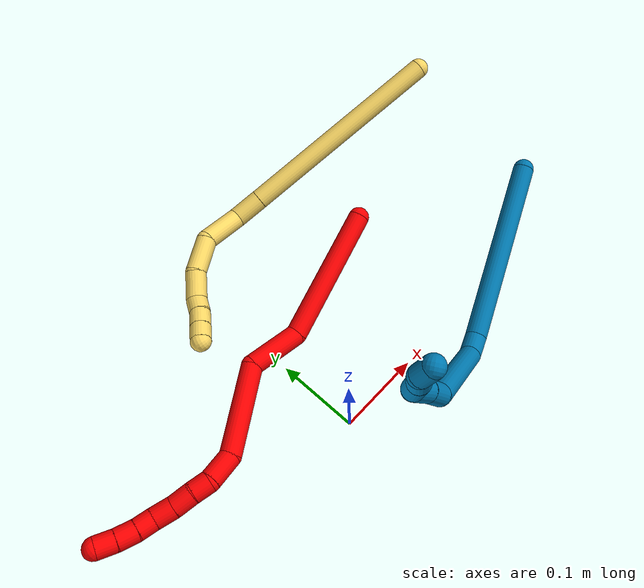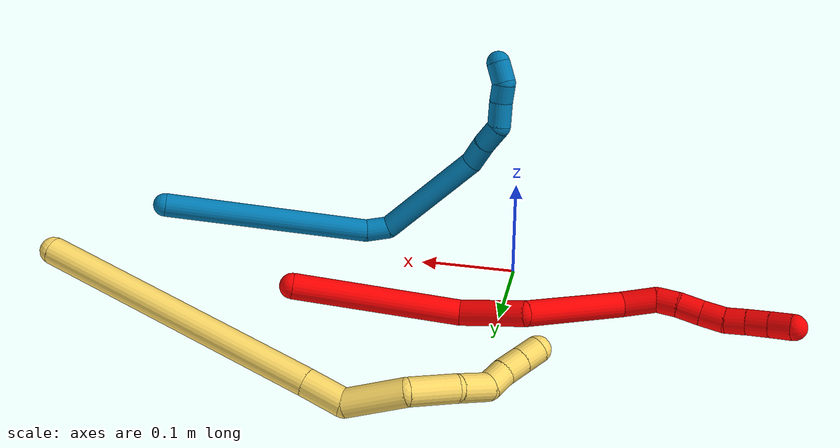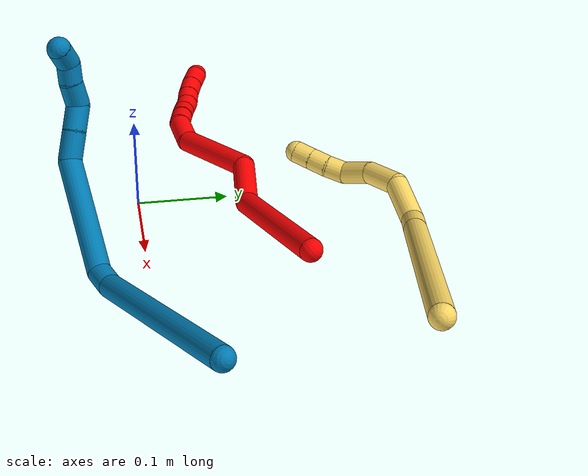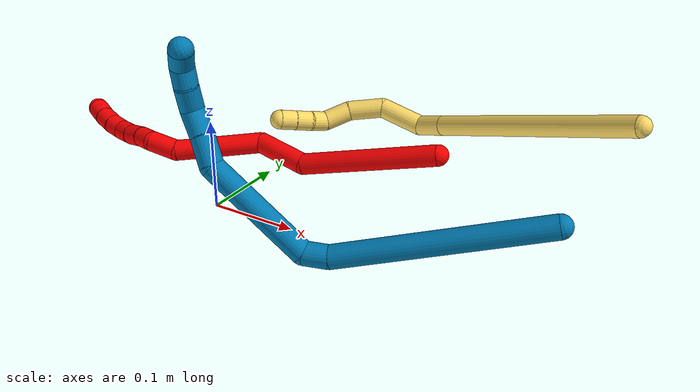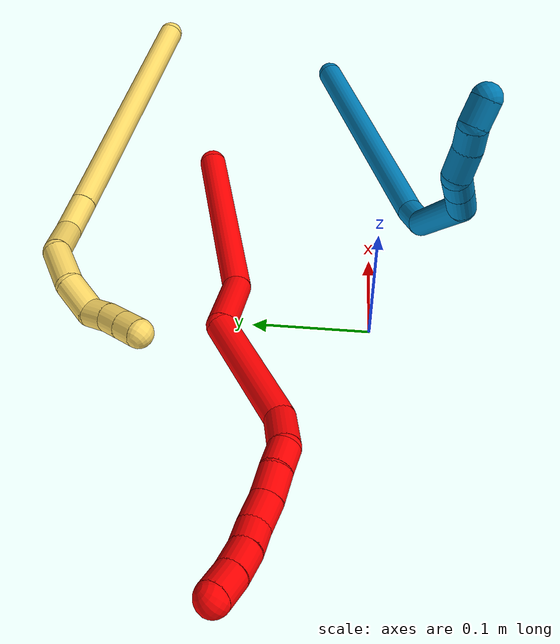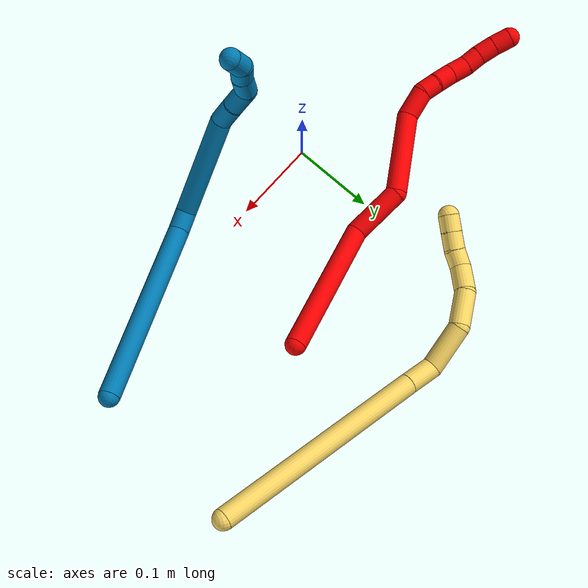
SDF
<sdf version="1.7">
 <world name="default">
  <model name="2">
   <static>0</static>
   <link name="2">
    <collision name="collision-cylinder-e_1_1_4">
     <pose>-0.077454 0.000726 -0.027057 -3.11475 -1.23461 3.10378</pose>
     <geometry><cylinder><radius>0.0125</radius><length>0.164095</length></cylinder></geometry>
     <surface>
      <friction><ode><mu>1.16</mu><mu2>1.16</mu2><slip1>0</slip1><slip2>0</slip2></ode></friction>
      <contact><ode><kp>1e+06</kp><kd>1</kd><max_vel>0</max_vel><min_depth>0.001</min_depth></ode></contact>
     </surface>
    </collision>
    <visual name="visual-cylinder-e_1_1_4">
     <pose>-0.077454 0.000726 -0.027057 -3.11475 -1.23461 3.10378</pose>
     <geometry><cylinder><radius>0.0125</radius><length>0.164095</length></cylinder></geometry>
     <material><ambient>1 0 0 1</ambient></material>
    </visual>
    <collision name="collision-cylinder-e_2_4_5">
     <pose>-0.187193 0.000964 -0.048769 0.091274 -1.40607 -0.077369</pose>
     <geometry><cylinder><radius>0.0125</radius><length>0.065454</length></cylinder></geometry>
     <surface>
      <friction><ode><mu>1.16</mu><mu2>1.16</mu2><slip1>0</slip1><slip2>0</slip2></ode></friction>
      <contact><ode><kp>1e+06</kp><kd>1</kd><max_vel>0</max_vel><min_depth>0.001</min_depth></ode></contact>
     </surface>
    </collision>
    <visual name="visual-cylinder-e_2_4_5">
     <pose>-0.187193 0.000964 -0.048769 0.091274 -1.40607 -0.077369</pose>
     <geometry><cylinder><radius>0.0125</radius><length>0.065454</length></cylinder></geometry>
     <material><ambient>1 0 0 1</ambient></material>
    </visual>
    <collision name="collision-cylinder-e_3_5_6">
     <pose>-0.263766 -0.013263 -0.067179 2.61727 -1.01611 -2.24344</pose>
     <geometry><cylinder><radius>0.0125</radius><length>0.104203</length></cylinder></geometry>
     <surface>
      <friction><ode><mu>1.16</mu><mu2>1.16</mu2><slip1>0</slip1><slip2>0</slip2></ode></friction>
      <contact><ode><kp>1e+06</kp><kd>1</kd><max_vel>0</max_vel><min_depth>0.001</min_depth></ode></contact>
     </surface>
    </collision>
    <visual name="visual-cylinder-e_3_5_6">
     <pose>-0.263766 -0.013263 -0.067179 2.61727 -1.01611 -2.24344</pose>
     <geometry><cylinder><radius>0.0125</radius><length>0.104203</length></cylinder></geometry>
     <material><ambient>1 0 0 1</ambient></material>
    </visual>
    <collision name="collision-cylinder-e_4_6_7">
     <pose>-0.325127 -0.030634 -0.090891 1.55902 -1.36102 -1.34951</pose>
     <geometry><cylinder><radius>0.0125</radius><length>0.034907</length></cylinder></geometry>
     <surface>
      <friction><ode><mu>1.16</mu><mu2>1.16</mu2><slip1>0</slip1><slip2>0</slip2></ode></friction>
      <contact><ode><kp>1e+06</kp><kd>1</kd><max_vel>0</max_vel><min_depth>0.001</min_depth></ode></contact>
     </surface>
    </collision>
    <visual name="visual-cylinder-e_4_6_7">
     <pose>-0.325127 -0.030634 -0.090891 1.55902 -1.36102 -1.34951</pose>
     <geometry><cylinder><radius>0.0125</radius><length>0.034907</length></cylinder></geometry>
     <material><ambient>1 0 0 1</ambient></material>
    </visual>
    <collision name="collision-cylinder-e_5_7_8">
     <pose>-0.352411 -0.032091 -0.089518 -1.02262 -1.32596 0.825903</pose>
     <geometry><cylinder><radius>0.0125</radius><length>0.021054</length></cylinder></geometry>
     <surface>
      <friction><ode><mu>1.16</mu><mu2>1.16</mu2><slip1>0</slip1><slip2>0</slip2></ode></friction>
      <contact><ode><kp>1e+06</kp><kd>1</kd><max_vel>0</max_vel><min_depth>0.001</min_depth></ode></contact>
     </surface>
    </collision>
    <visual name="visual-cylinder-e_5_7_8">
     <pose>-0.352411 -0.032091 -0.089518 -1.02262 -1.32596 0.825903</pose>
     <geometry><cylinder><radius>0.0125</radius><length>0.021054</length></cylinder></geometry>
     <material><ambient>1 0 0 1</ambient></material>
    </visual>
    <collision name="collision-cylinder-e_6_8_9">
     <pose>-0.373691 -0.026517 -0.087951 -1.50094 -1.27236 1.20627</pose>
     <geometry><cylinder><radius>0.0125</radius><length>0.023157</length></cylinder></geometry>
     <surface>
      <friction><ode><mu>1.16</mu><mu2>1.16</mu2><slip1>0</slip1><slip2>0</slip2></ode></friction>
      <contact><ode><kp>1e+06</kp><kd>1</kd><max_vel>0</max_vel><min_depth>0.001</min_depth></ode></contact>
     </surface>
    </collision>
    <visual name="visual-cylinder-e_6_8_9">
     <pose>-0.373691 -0.026517 -0.087951 -1.50094 -1.27236 1.20627</pose>
     <geometry><cylinder><radius>0.0125</radius><length>0.023157</length></cylinder></geometry>
     <material><ambient>1 0 0 1</ambient></material>
    </visual>
    <collision name="collision-cylinder-e_7_9_10">
     <pose>-0.395738 -0.019817 -0.085875 -1.06325 -1.23919 0.794391</pose>
     <geometry><cylinder><radius>0.0125</radius><length>0.023226</length></cylinder></geometry>
     <surface>
      <friction><ode><mu>1.16</mu><mu2>1.16</mu2><slip1>0</slip1><slip2>0</slip2></ode></friction>
      <contact><ode><kp>1e+06</kp><kd>1</kd><max_vel>0</max_vel><min_depth>0.001</min_depth></ode></contact>
     </surface>
    </collision>
    <visual name="visual-cylinder-e_7_9_10">
     <pose>-0.395738 -0.019817 -0.085875 -1.06325 -1.23919 0.794391</pose>
     <geometry><cylinder><radius>0.0125</radius><length>0.023226</length></cylinder></geometry>
     <material><ambient>1 0 0 1</ambient></material>
    </visual>
    <collision name="collision-cylinder-e_8_10_11">
     <pose>-0.416488 -0.015896 -0.081989 -0.29248 -1.35519 0.235947</pose>
     <geometry><cylinder><radius>0.0125</radius><length>0.020002</length></cylinder></geometry>
     <surface>
      <friction><ode><mu>1.16</mu><mu2>1.16</mu2><slip1>0</slip1><slip2>0</slip2></ode></friction>
      <contact><ode><kp>1e+06</kp><kd>1</kd><max_vel>0</max_vel><min_depth>0.001</min_depth></ode></contact>
     </surface>
    </collision>
    <visual name="visual-cylinder-e_8_10_11">
     <pose>-0.416488 -0.015896 -0.081989 -0.29248 -1.35519 0.235947</pose>
     <geometry><cylinder><radius>0.0125</radius><length>0.020002</length></cylinder></geometry>
     <material><ambient>1 0 0 1</ambient></material>
    </visual>
    <collision name="collision-cylinder-e_9_11_12">
     <pose>-0.436622 -0.013982 -0.076333 -0.345041 -1.21654 0.2415</pose>
     <geometry><cylinder><radius>0.0125</radius><length>0.022102</length></cylinder></geometry>
     <surface>
      <friction><ode><mu>1.16</mu><mu2>1.16</mu2><slip1>0</slip1><slip2>0</slip2></ode></friction>
      <contact><ode><kp>1e+06</kp><kd>1</kd><max_vel>0</max_vel><min_depth>0.001</min_depth></ode></contact>
     </surface>
    </collision>
    <visual name="visual-cylinder-e_9_11_12">
     <pose>-0.436622 -0.013982 -0.076333 -0.345041 -1.21654 0.2415</pose>
     <geometry><cylinder><radius>0.0125</radius><length>0.022102</length></cylinder></geometry>
     <material><ambient>1 0 0 1</ambient></material>
    </visual>
    <collision name="collision-cylinder-e_10_12_2">
     <pose>-0.456748 -0.011006 -0.068175 -0.353625 -1.10963 0.220572</pose>
     <geometry><cylinder><radius>0.0125</radius><length>0.0218</length></cylinder></geometry>
     <surface>
      <friction><ode><mu>1.16</mu><mu2>1.16</mu2><slip1>0</slip1><slip2>0</slip2></ode></friction>
      <contact><ode><kp>1e+06</kp><kd>1</kd><max_vel>0</max_vel><min_depth>0.001</min_depth></ode></contact>
     </surface>
    </collision>
    <visual name="visual-cylinder-e_10_12_2">
     <pose>-0.456748 -0.011006 -0.068175 -0.353625 -1.10963 0.220572</pose>
     <geometry><cylinder><radius>0.0125</radius><length>0.0218</length></cylinder></geometry>
     <material><ambient>1 0 0 1</ambient></material>
    </visual>
    <collision name="collision-sphere-2">
     <pose>-0.46651 -0.009326 -0.063625 0 -0 0</pose>
     <geometry><sphere><radius>0.0125</radius></sphere></geometry>
     <surface>
      <friction><ode><mu>1.16</mu><mu2>1.16</mu2><slip1>0</slip1><slip2>0</slip2></ode></friction>
      <contact><ode><kp>1e+06</kp><kd>1</kd><max_vel>0</max_vel><min_depth>0.001</min_depth></ode></contact>
     </surface>
    </collision>
    <visual name="visual-sphere-2">
     <pose>-0.46651 -0.009326 -0.063625 0 -0 0</pose>
     <geometry><sphere><radius>0.0125</radius></sphere></geometry>
     <material><ambient>1 0 0 1</ambient></material>
    </visual>
    <collision name="collision-sphere-12">
     <pose>-0.446987 -0.012686 -0.072725 0 -0 0</pose>
     <geometry><sphere><radius>0.0125</radius></sphere></geometry>
     <surface>
      <friction><ode><mu>1.16</mu><mu2>1.16</mu2><slip1>0</slip1><slip2>0</slip2></ode></friction>
      <contact><ode><kp>1e+06</kp><kd>1</kd><max_vel>0</max_vel><min_depth>0.001</min_depth></ode></contact>
     </surface>
    </collision>
    <visual name="visual-sphere-12">
     <pose>-0.446987 -0.012686 -0.072725 0 -0 0</pose>
     <geometry><sphere><radius>0.0125</radius></sphere></geometry>
     <material><ambient>1 0 0 1</ambient></material>
    </visual>
    <collision name="collision-sphere-11">
     <pose>-0.426257 -0.015279 -0.07994 0 -0 0</pose>
     <geometry><sphere><radius>0.0125</radius></sphere></geometry>
     <surface>
      <friction><ode><mu>1.16</mu><mu2>1.16</mu2><slip1>0</slip1><slip2>0</slip2></ode></friction>
      <contact><ode><kp>1e+06</kp><kd>1</kd><max_vel>0</max_vel><min_depth>0.001</min_depth></ode></contact>
     </surface>
    </collision>
    <visual name="visual-sphere-11">
     <pose>-0.426257 -0.015279 -0.07994 0 -0 0</pose>
     <geometry><sphere><radius>0.0125</radius></sphere></geometry>
     <material><ambient>1 0 0 1</ambient></material>
    </visual>
    <collision name="collision-sphere-10">
     <pose>-0.406719 -0.016513 -0.084038 0 -0 0</pose>
     <geometry><sphere><radius>0.0125</radius></sphere></geometry>
     <surface>
      <friction><ode><mu>1.16</mu><mu2>1.16</mu2><slip1>0</slip1><slip2>0</slip2></ode></friction>
      <contact><ode><kp>1e+06</kp><kd>1</kd><max_vel>0</max_vel><min_depth>0.001</min_depth></ode></contact>
     </surface>
    </collision>
    <visual name="visual-sphere-10">
     <pose>-0.406719 -0.016513 -0.084038 0 -0 0</pose>
     <geometry><sphere><radius>0.0125</radius></sphere></geometry>
     <material><ambient>1 0 0 1</ambient></material>
    </visual>
    <collision name="collision-sphere-9">
     <pose>-0.384758 -0.023121 -0.087713 0 -0 0</pose>
     <geometry><sphere><radius>0.0125</radius></sphere></geometry>
     <surface>
      <friction><ode><mu>1.16</mu><mu2>1.16</mu2><slip1>0</slip1><slip2>0</slip2></ode></friction>
      <contact><ode><kp>1e+06</kp><kd>1</kd><max_vel>0</max_vel><min_depth>0.001</min_depth></ode></contact>
     </surface>
    </collision>
    <visual name="visual-sphere-9">
     <pose>-0.384758 -0.023121 -0.087713 0 -0 0</pose>
     <geometry><sphere><radius>0.0125</radius></sphere></geometry>
     <material><ambient>1 0 0 1</ambient></material>
    </visual>
    <collision name="collision-sphere-4">
     <pose>-0.154909 0.001453 -0.054114 0 -0 0</pose>
     <geometry><sphere><radius>0.0125</radius></sphere></geometry>
     <surface>
      <friction><ode><mu>1.16</mu><mu2>1.16</mu2><slip1>0</slip1><slip2>0</slip2></ode></friction>
      <contact><ode><kp>1e+06</kp><kd>1</kd><max_vel>0</max_vel><min_depth>0.001</min_depth></ode></contact>
     </surface>
    </collision>
    <visual name="visual-sphere-4">
     <pose>-0.154909 0.001453 -0.054114 0 -0 0</pose>
     <geometry><sphere><radius>0.0125</radius></sphere></geometry>
     <material><ambient>1 0 0 1</ambient></material>
    </visual>
    <collision name="collision-sphere-1">
     <geometry><sphere><radius>0.0125</radius></sphere></geometry>
     <surface>
      <friction><ode><mu>1.16</mu><mu2>1.16</mu2><slip1>0</slip1><slip2>0</slip2></ode></friction>
      <contact><ode><kp>1e+06</kp><kd>1</kd><max_vel>0</max_vel><min_depth>0.001</min_depth></ode></contact>
     </surface>
    </collision>
    <visual name="visual-sphere-1">
     <geometry><sphere><radius>0.0125</radius></sphere></geometry>
     <material><ambient>1 0 0 1</ambient></material>
    </visual>
    <collision name="collision-sphere-8">
     <pose>-0.362624 -0.029913 -0.088188 0 -0 0</pose>
     <geometry><sphere><radius>0.0125</radius></sphere></geometry>
     <surface>
      <friction><ode><mu>1.16</mu><mu2>1.16</mu2><slip1>0</slip1><slip2>0</slip2></ode></friction>
      <contact><ode><kp>1e+06</kp><kd>1</kd><max_vel>0</max_vel><min_depth>0.001</min_depth></ode></contact>
     </surface>
    </collision>
    <visual name="visual-sphere-8">
     <pose>-0.362624 -0.029913 -0.088188 0 -0 0</pose>
     <geometry><sphere><radius>0.0125</radius></sphere></geometry>
     <material><ambient>1 0 0 1</ambient></material>
    </visual>
    <collision name="collision-sphere-5">
     <pose>-0.219477 0.000475 -0.043425 0 -0 0</pose>
     <geometry><sphere><radius>0.0125</radius></sphere></geometry>
     <surface>
      <friction><ode><mu>1.16</mu><mu2>1.16</mu2><slip1>0</slip1><slip2>0</slip2></ode></friction>
      <contact><ode><kp>1e+06</kp><kd>1</kd><max_vel>0</max_vel><min_depth>0.001</min_depth></ode></contact>
     </surface>
    </collision>
    <visual name="visual-sphere-5">
     <pose>-0.219477 0.000475 -0.043425 0 -0 0</pose>
     <geometry><sphere><radius>0.0125</radius></sphere></geometry>
     <material><ambient>1 0 0 1</ambient></material>
    </visual>
    <collision name="collision-sphere-6">
     <pose>-0.308056 -0.027 -0.090933 0 -0 0</pose>
     <geometry><sphere><radius>0.0125</radius></sphere></geometry>
     <surface>
      <friction><ode><mu>1.16</mu><mu2>1.16</mu2><slip1>0</slip1><slip2>0</slip2></ode></friction>
      <contact><ode><kp>1e+06</kp><kd>1</kd><max_vel>0</max_vel><min_depth>0.001</min_depth></ode></contact>
     </surface>
    </collision>
    <visual name="visual-sphere-6">
     <pose>-0.308056 -0.027 -0.090933 0 -0 0</pose>
     <geometry><sphere><radius>0.0125</radius></sphere></geometry>
     <material><ambient>1 0 0 1</ambient></material>
    </visual>
    <collision name="collision-sphere-7">
     <pose>-0.342198 -0.034269 -0.090848 0 -0 0</pose>
     <geometry><sphere><radius>0.0125</radius></sphere></geometry>
     <surface>
      <friction><ode><mu>1.16</mu><mu2>1.16</mu2><slip1>0</slip1><slip2>0</slip2></ode></friction>
      <contact><ode><kp>1e+06</kp><kd>1</kd><max_vel>0</max_vel><min_depth>0.001</min_depth></ode></contact>
     </surface>
    </collision>
    <visual name="visual-sphere-7">
     <pose>-0.342198 -0.034269 -0.090848 0 -0 0</pose>
     <geometry><sphere><radius>0.0125</radius></sphere></geometry>
     <material><ambient>1 0 0 1</ambient></material>
    </visual>
    <inertial>
     <pose>-0.233999 -0.009772 -0.057068 0 -0 0</pose>
     <mass>0.5</mass>
     <inertia>
      <ixx>-0.000221</ixx>
      <ixy>0</ixy>
      <ixz>0</ixz>
      <iyy>0.000465</iyy>
      <iyz>0</iyz>
      <izz>0.000495</izz>
     </inertia>
    </inertial>
   </link>
   <pose>0.190971 0.15885 0.045027 -0.809656 0.031139 0.020762</pose>
  </model>
  <model name="5">
   <static>0</static>
   <link name="5">
    <collision name="collision-cylinder-e_1_1_4">
     <pose>-0.019305 0.030429 -0.127848 -2.90793 -0.145853 1.11356</pose>
     <geometry><cylinder><radius>0.0125</radius><length>0.265658</length></cylinder></geometry>
     <surface>
      <friction><ode><mu>1.16</mu><mu2>1.16</mu2><slip1>0</slip1><slip2>0</slip2></ode></friction>
      <contact><ode><kp>1e+06</kp><kd>1</kd><max_vel>0</max_vel><min_depth>0.001</min_depth></ode></contact>
     </surface>
    </collision>
    <visual name="visual-cylinder-e_1_1_4">
     <pose>-0.019305 0.030429 -0.127848 -2.90793 -0.145853 1.11356</pose>
     <geometry><cylinder><radius>0.0125</radius><length>0.265658</length></cylinder></geometry>
     <material><ambient>1 0.858824 0.4 1</ambient></material>
    </visual>
    <collision name="collision-cylinder-e_2_4_5">
     <pose>-0.041384 0.064811 -0.273842 -2.92706 -0.148264 1.20759</pose>
     <geometry><cylinder><radius>0.0125</radius><length>0.037558</length></cylinder></geometry>
     <surface>
      <friction><ode><mu>1.16</mu><mu2>1.16</mu2><slip1>0</slip1><slip2>0</slip2></ode></friction>
      <contact><ode><kp>1e+06</kp><kd>1</kd><max_vel>0</max_vel><min_depth>0.001</min_depth></ode></contact>
     </surface>
    </collision>
    <visual name="visual-cylinder-e_2_4_5">
     <pose>-0.041384 0.064811 -0.273842 -2.92706 -0.148264 1.20759</pose>
     <geometry><cylinder><radius>0.0125</radius><length>0.037558</length></cylinder></geometry>
     <material><ambient>1 0.858824 0.4 1</ambient></material>
    </visual>
    <collision name="collision-cylinder-e_3_5_6">
     <pose>-0.040667 0.088562 -0.31104 -2.33698 0.126362 -0.295195</pose>
     <geometry><cylinder><radius>0.0125</radius><length>0.055391</length></cylinder></geometry>
     <surface>
      <friction><ode><mu>1.16</mu><mu2>1.16</mu2><slip1>0</slip1><slip2>0</slip2></ode></friction>
      <contact><ode><kp>1e+06</kp><kd>1</kd><max_vel>0</max_vel><min_depth>0.001</min_depth></ode></contact>
     </surface>
    </collision>
    <visual name="visual-cylinder-e_3_5_6">
     <pose>-0.040667 0.088562 -0.31104 -2.33698 0.126362 -0.295195</pose>
     <geometry><cylinder><radius>0.0125</radius><length>0.055391</length></cylinder></geometry>
     <material><ambient>1 0.858824 0.4 1</ambient></material>
    </visual>
    <collision name="collision-cylinder-e_4_6_7">
     <pose>-0.046255 0.124119 -0.342376 -2.23296 -0.426407 0.834506</pose>
     <geometry><cylinder><radius>0.0125</radius><length>0.043895</length></cylinder></geometry>
     <surface>
      <friction><ode><mu>1.16</mu><mu2>1.16</mu2><slip1>0</slip1><slip2>0</slip2></ode></friction>
      <contact><ode><kp>1e+06</kp><kd>1</kd><max_vel>0</max_vel><min_depth>0.001</min_depth></ode></contact>
     </surface>
    </collision>
    <visual name="visual-cylinder-e_4_6_7">
     <pose>-0.046255 0.124119 -0.342376 -2.23296 -0.426407 0.834506</pose>
     <geometry><cylinder><radius>0.0125</radius><length>0.043895</length></cylinder></geometry>
     <material><ambient>1 0.858824 0.4 1</ambient></material>
    </visual>
    <collision name="collision-cylinder-e_5_7_8">
     <pose>-0.067296 0.150764 -0.360767 -2.08198 -0.764224 1.20278</pose>
     <geometry><cylinder><radius>0.0125</radius><length>0.034578</length></cylinder></geometry>
     <surface>
      <friction><ode><mu>1.16</mu><mu2>1.16</mu2><slip1>0</slip1><slip2>0</slip2></ode></friction>
      <contact><ode><kp>1e+06</kp><kd>1</kd><max_vel>0</max_vel><min_depth>0.001</min_depth></ode></contact>
     </surface>
    </collision>
    <visual name="visual-cylinder-e_5_7_8">
     <pose>-0.067296 0.150764 -0.360767 -2.08198 -0.764224 1.20278</pose>
     <geometry><cylinder><radius>0.0125</radius><length>0.034578</length></cylinder></geometry>
     <material><ambient>1 0.858824 0.4 1</ambient></material>
    </visual>
    <collision name="collision-cylinder-e_6_8_9">
     <pose>-0.083212 0.171539 -0.36665 -1.54828 -0.380175 0.371905</pose>
     <geometry><cylinder><radius>0.0125</radius><length>0.021306</length></cylinder></geometry>
     <surface>
      <friction><ode><mu>1.16</mu><mu2>1.16</mu2><slip1>0</slip1><slip2>0</slip2></ode></friction>
      <contact><ode><kp>1e+06</kp><kd>1</kd><max_vel>0</max_vel><min_depth>0.001</min_depth></ode></contact>
     </surface>
    </collision>
    <visual name="visual-cylinder-e_6_8_9">
     <pose>-0.083212 0.171539 -0.36665 -1.54828 -0.380175 0.371905</pose>
     <geometry><cylinder><radius>0.0125</radius><length>0.021306</length></cylinder></geometry>
     <material><ambient>1 0.858824 0.4 1</ambient></material>
    </visual>
    <collision name="collision-cylinder-e_7_9_10">
     <pose>-0.090703 0.191264 -0.367899 -1.71927 -0.341767 0.395363</pose>
     <geometry><cylinder><radius>0.0125</radius><length>0.021109</length></cylinder></geometry>
     <surface>
      <friction><ode><mu>1.16</mu><mu2>1.16</mu2><slip1>0</slip1><slip2>0</slip2></ode></friction>
      <contact><ode><kp>1e+06</kp><kd>1</kd><max_vel>0</max_vel><min_depth>0.001</min_depth></ode></contact>
     </surface>
    </collision>
    <visual name="visual-cylinder-e_7_9_10">
     <pose>-0.090703 0.191264 -0.367899 -1.71927 -0.341767 0.395363</pose>
     <geometry><cylinder><radius>0.0125</radius><length>0.021109</length></cylinder></geometry>
     <material><ambient>1 0.858824 0.4 1</ambient></material>
    </visual>
    <collision name="collision-cylinder-e_8_10_2">
     <pose>-0.097661 0.210649 -0.370857 -1.7253 -0.3402 0.395909</pose>
     <geometry><cylinder><radius>0.0125</radius><length>0.020506</length></cylinder></geometry>
     <surface>
      <friction><ode><mu>1.16</mu><mu2>1.16</mu2><slip1>0</slip1><slip2>0</slip2></ode></friction>
      <contact><ode><kp>1e+06</kp><kd>1</kd><max_vel>0</max_vel><min_depth>0.001</min_depth></ode></contact>
     </surface>
    </collision>
    <visual name="visual-cylinder-e_8_10_2">
     <pose>-0.097661 0.210649 -0.370857 -1.7253 -0.3402 0.395909</pose>
     <geometry><cylinder><radius>0.0125</radius><length>0.020506</length></cylinder></geometry>
     <material><ambient>1 0.858824 0.4 1</ambient></material>
    </visual>
    <collision name="collision-sphere-2">
     <pose>-0.101082 0.220199 -0.372344 0 -0 0</pose>
     <geometry><sphere><radius>0.0125</radius></sphere></geometry>
     <surface>
      <friction><ode><mu>1.16</mu><mu2>1.16</mu2><slip1>0</slip1><slip2>0</slip2></ode></friction>
      <contact><ode><kp>1e+06</kp><kd>1</kd><max_vel>0</max_vel><min_depth>0.001</min_depth></ode></contact>
     </surface>
    </collision>
    <visual name="visual-sphere-2">
     <pose>-0.101082 0.220199 -0.372344 0 -0 0</pose>
     <geometry><sphere><radius>0.0125</radius></sphere></geometry>
     <material><ambient>1 0.858824 0.4 1</ambient></material>
    </visual>
    <collision name="collision-sphere-10">
     <pose>-0.09424 0.201099 -0.36937 0 -0 0</pose>
     <geometry><sphere><radius>0.0125</radius></sphere></geometry>
     <surface>
      <friction><ode><mu>1.16</mu><mu2>1.16</mu2><slip1>0</slip1><slip2>0</slip2></ode></friction>
      <contact><ode><kp>1e+06</kp><kd>1</kd><max_vel>0</max_vel><min_depth>0.001</min_depth></ode></contact>
     </surface>
    </collision>
    <visual name="visual-sphere-10">
     <pose>-0.09424 0.201099 -0.36937 0 -0 0</pose>
     <geometry><sphere><radius>0.0125</radius></sphere></geometry>
     <material><ambient>1 0.858824 0.4 1</ambient></material>
    </visual>
    <collision name="collision-sphere-9">
     <pose>-0.087165 0.181429 -0.366428 0 -0 0</pose>
     <geometry><sphere><radius>0.0125</radius></sphere></geometry>
     <surface>
      <friction><ode><mu>1.16</mu><mu2>1.16</mu2><slip1>0</slip1><slip2>0</slip2></ode></friction>
      <contact><ode><kp>1e+06</kp><kd>1</kd><max_vel>0</max_vel><min_depth>0.001</min_depth></ode></contact>
     </surface>
    </collision>
    <visual name="visual-sphere-9">
     <pose>-0.087165 0.181429 -0.366428 0 -0 0</pose>
     <geometry><sphere><radius>0.0125</radius></sphere></geometry>
     <material><ambient>1 0.858824 0.4 1</ambient></material>
    </visual>
    <collision name="collision-sphere-4">
     <pose>-0.03861 0.060857 -0.255695 0 -0 0</pose>
     <geometry><sphere><radius>0.0125</radius></sphere></geometry>
     <surface>
      <friction><ode><mu>1.16</mu><mu2>1.16</mu2><slip1>0</slip1><slip2>0</slip2></ode></friction>
      <contact><ode><kp>1e+06</kp><kd>1</kd><max_vel>0</max_vel><min_depth>0.001</min_depth></ode></contact>
     </surface>
    </collision>
    <visual name="visual-sphere-4">
     <pose>-0.03861 0.060857 -0.255695 0 -0 0</pose>
     <geometry><sphere><radius>0.0125</radius></sphere></geometry>
     <material><ambient>1 0.858824 0.4 1</ambient></material>
    </visual>
    <collision name="collision-sphere-1">
     <geometry><sphere><radius>0.0125</radius></sphere></geometry>
     <surface>
      <friction><ode><mu>1.16</mu><mu2>1.16</mu2><slip1>0</slip1><slip2>0</slip2></ode></friction>
      <contact><ode><kp>1e+06</kp><kd>1</kd><max_vel>0</max_vel><min_depth>0.001</min_depth></ode></contact>
     </surface>
    </collision>
    <visual name="visual-sphere-1">
     <geometry><sphere><radius>0.0125</radius></sphere></geometry>
     <material><ambient>1 0.858824 0.4 1</ambient></material>
    </visual>
    <collision name="collision-sphere-8">
     <pose>-0.079259 0.161649 -0.366873 0 -0 0</pose>
     <geometry><sphere><radius>0.0125</radius></sphere></geometry>
     <surface>
      <friction><ode><mu>1.16</mu><mu2>1.16</mu2><slip1>0</slip1><slip2>0</slip2></ode></friction>
      <contact><ode><kp>1e+06</kp><kd>1</kd><max_vel>0</max_vel><min_depth>0.001</min_depth></ode></contact>
     </surface>
    </collision>
    <visual name="visual-sphere-8">
     <pose>-0.079259 0.161649 -0.366873 0 -0 0</pose>
     <geometry><sphere><radius>0.0125</radius></sphere></geometry>
     <material><ambient>1 0.858824 0.4 1</ambient></material>
    </visual>
    <collision name="collision-sphere-5">
     <pose>-0.044158 0.068765 -0.291989 0 -0 0</pose>
     <geometry><sphere><radius>0.0125</radius></sphere></geometry>
     <surface>
      <friction><ode><mu>1.16</mu><mu2>1.16</mu2><slip1>0</slip1><slip2>0</slip2></ode></friction>
      <contact><ode><kp>1e+06</kp><kd>1</kd><max_vel>0</max_vel><min_depth>0.001</min_depth></ode></contact>
     </surface>
    </collision>
    <visual name="visual-sphere-5">
     <pose>-0.044158 0.068765 -0.291989 0 -0 0</pose>
     <geometry><sphere><radius>0.0125</radius></sphere></geometry>
     <material><ambient>1 0.858824 0.4 1</ambient></material>
    </visual>
    <collision name="collision-sphere-6">
     <pose>-0.037177 0.10836 -0.33009 0 -0 0</pose>
     <geometry><sphere><radius>0.0125</radius></sphere></geometry>
     <surface>
      <friction><ode><mu>1.16</mu><mu2>1.16</mu2><slip1>0</slip1><slip2>0</slip2></ode></friction>
      <contact><ode><kp>1e+06</kp><kd>1</kd><max_vel>0</max_vel><min_depth>0.001</min_depth></ode></contact>
     </surface>
    </collision>
    <visual name="visual-sphere-6">
     <pose>-0.037177 0.10836 -0.33009 0 -0 0</pose>
     <geometry><sphere><radius>0.0125</radius></sphere></geometry>
     <material><ambient>1 0.858824 0.4 1</ambient></material>
    </visual>
    <collision name="collision-sphere-7">
     <pose>-0.055332 0.139878 -0.354661 0 -0 0</pose>
     <geometry><sphere><radius>0.0125</radius></sphere></geometry>
     <surface>
      <friction><ode><mu>1.16</mu><mu2>1.16</mu2><slip1>0</slip1><slip2>0</slip2></ode></friction>
      <contact><ode><kp>1e+06</kp><kd>1</kd><max_vel>0</max_vel><min_depth>0.001</min_depth></ode></contact>
     </surface>
    </collision>
    <visual name="visual-sphere-7">
     <pose>-0.055332 0.139878 -0.354661 0 -0 0</pose>
     <geometry><sphere><radius>0.0125</radius></sphere></geometry>
     <material><ambient>1 0.858824 0.4 1</ambient></material>
    </visual>
    <inertial>
     <pose>-0.037966 0.076193 -0.224326 0 -0 0</pose>
     <mass>0.5</mass>
     <inertia>
      <ixx>0.002115</ixx>
      <ixy>0</ixy>
      <ixz>0</ixz>
      <iyy>0.000785</iyy>
      <iyz>0</iyz>
      <izz>-0.00018</izz>
     </inertia>
    </inertial>
   </link>
   <pose>0.388271 0.233344 0.098143 1.06098 -0.918527 1.51535</pose>
  </model>
  <model name="9">
   <static>0</static>
   <link name="9">
    <collision name="collision-cylinder-e_1_1_4">
     <pose>-0.020626 -0.009885 -0.108941 3.0511 -0.186372 -2.23929</pose>
     <geometry><cylinder><radius>0.0125</radius><length>0.222632</length></cylinder></geometry>
     <surface>
      <friction><ode><mu>1.16</mu><mu2>1.16</mu2><slip1>0</slip1><slip2>0</slip2></ode></friction>
      <contact><ode><kp>1e+06</kp><kd>1</kd><max_vel>0</max_vel><min_depth>0.001</min_depth></ode></contact>
     </surface>
    </collision>
    <visual name="visual-cylinder-e_1_1_4">
     <pose>-0.020626 -0.009885 -0.108941 3.0511 -0.186372 -2.23929</pose>
     <geometry><cylinder><radius>0.0125</radius><length>0.222632</length></cylinder></geometry>
     <material><ambient>0 0.490196 0.709804 1</ambient></material>
    </visual>
    <collision name="collision-cylinder-e_2_4_5">
     <pose>-0.046459 -0.023424 -0.229244 2.83047 -0.411333 -1.85234</pose>
     <geometry><cylinder><radius>0.0125</radius><length>0.026042</length></cylinder></geometry>
     <surface>
      <friction><ode><mu>1.16</mu><mu2>1.16</mu2><slip1>0</slip1><slip2>0</slip2></ode></friction>
      <contact><ode><kp>1e+06</kp><kd>1</kd><max_vel>0</max_vel><min_depth>0.001</min_depth></ode></contact>
     </surface>
    </collision>
    <visual name="visual-cylinder-e_2_4_5">
     <pose>-0.046459 -0.023424 -0.229244 2.83047 -0.411333 -1.85234</pose>
     <geometry><cylinder><radius>0.0125</radius><length>0.026042</length></cylinder></geometry>
     <material><ambient>0 0.490196 0.709804 1</ambient></material>
    </visual>
    <collision name="collision-cylinder-e_3_5_6">
     <pose>-0.097308 -0.05977 -0.265054 2.2129 -0.841088 -1.45775</pose>
     <geometry><cylinder><radius>0.0125</radius><length>0.122471</length></cylinder></geometry>
     <surface>
      <friction><ode><mu>1.16</mu><mu2>1.16</mu2><slip1>0</slip1><slip2>0</slip2></ode></friction>
      <contact><ode><kp>1e+06</kp><kd>1</kd><max_vel>0</max_vel><min_depth>0.001</min_depth></ode></contact>
     </surface>
    </collision>
    <visual name="visual-cylinder-e_3_5_6">
     <pose>-0.097308 -0.05977 -0.265054 2.2129 -0.841088 -1.45775</pose>
     <geometry><cylinder><radius>0.0125</radius><length>0.122471</length></cylinder></geometry>
     <material><ambient>0 0.490196 0.709804 1</ambient></material>
    </visual>
    <collision name="collision-cylinder-e_4_6_7">
     <pose>-0.157081 -0.098521 -0.288701 1.43937 -1.16263 -1.04503</pose>
     <geometry><cylinder><radius>0.0125</radius><length>0.030788</length></cylinder></geometry>
     <surface>
      <friction><ode><mu>1.16</mu><mu2>1.16</mu2><slip1>0</slip1><slip2>0</slip2></ode></friction>
      <contact><ode><kp>1e+06</kp><kd>1</kd><max_vel>0</max_vel><min_depth>0.001</min_depth></ode></contact>
     </surface>
    </collision>
    <visual name="visual-cylinder-e_4_6_7">
     <pose>-0.157081 -0.098521 -0.288701 1.43937 -1.16263 -1.04503</pose>
     <geometry><cylinder><radius>0.0125</radius><length>0.030788</length></cylinder></geometry>
     <material><ambient>0 0.490196 0.709804 1</ambient></material>
    </visual>
    <collision name="collision-cylinder-e_5_7_8">
     <pose>-0.184403 -0.109714 -0.288315 1.65144 -1.19846 -1.2747</pose>
     <geometry><cylinder><radius>0.0125</radius><length>0.028327</length></cylinder></geometry>
     <surface>
      <friction><ode><mu>1.16</mu><mu2>1.16</mu2><slip1>0</slip1><slip2>0</slip2></ode></friction>
      <contact><ode><kp>1e+06</kp><kd>1</kd><max_vel>0</max_vel><min_depth>0.001</min_depth></ode></contact>
     </surface>
    </collision>
    <visual name="visual-cylinder-e_5_7_8">
     <pose>-0.184403 -0.109714 -0.288315 1.65144 -1.19846 -1.2747</pose>
     <geometry><cylinder><radius>0.0125</radius><length>0.028327</length></cylinder></geometry>
     <material><ambient>0 0.490196 0.709804 1</ambient></material>
    </visual>
    <collision name="collision-cylinder-e_6_8_9">
     <pose>-0.204116 -0.125715 -0.284793 1.22317 -0.513676 -0.364283</pose>
     <geometry><cylinder><radius>0.0125</radius><length>0.026538</length></cylinder></geometry>
     <surface>
      <friction><ode><mu>1.16</mu><mu2>1.16</mu2><slip1>0</slip1><slip2>0</slip2></ode></friction>
      <contact><ode><kp>1e+06</kp><kd>1</kd><max_vel>0</max_vel><min_depth>0.001</min_depth></ode></contact>
     </surface>
    </collision>
    <visual name="visual-cylinder-e_6_8_9">
     <pose>-0.204116 -0.125715 -0.284793 1.22317 -0.513676 -0.364283</pose>
     <geometry><cylinder><radius>0.0125</radius><length>0.026538</length></cylinder></geometry>
     <material><ambient>0 0.490196 0.709804 1</ambient></material>
    </visual>
    <collision name="collision-cylinder-e_7_9_10">
     <pose>-0.21725 -0.143851 -0.277836 1.17707 -0.698687 -0.477017</pose>
     <geometry><cylinder><radius>0.0125</radius><length>0.020565</length></cylinder></geometry>
     <surface>
      <friction><ode><mu>1.16</mu><mu2>1.16</mu2><slip1>0</slip1><slip2>0</slip2></ode></friction>
      <contact><ode><kp>1e+06</kp><kd>1</kd><max_vel>0</max_vel><min_depth>0.001</min_depth></ode></contact>
     </surface>
    </collision>
    <visual name="visual-cylinder-e_7_9_10">
     <pose>-0.21725 -0.143851 -0.277836 1.17707 -0.698687 -0.477017</pose>
     <geometry><cylinder><radius>0.0125</radius><length>0.020565</length></cylinder></geometry>
     <material><ambient>0 0.490196 0.709804 1</ambient></material>
    </visual>
    <collision name="collision-cylinder-e_8_10_2">
     <pose>-0.225371 -0.160908 -0.269332 1.06006 -0.133535 -0.078322</pose>
     <geometry><cylinder><radius>0.0125</radius><length>0.022636</length></cylinder></geometry>
     <surface>
      <friction><ode><mu>1.16</mu><mu2>1.16</mu2><slip1>0</slip1><slip2>0</slip2></ode></friction>
      <contact><ode><kp>1e+06</kp><kd>1</kd><max_vel>0</max_vel><min_depth>0.001</min_depth></ode></contact>
     </surface>
    </collision>
    <visual name="visual-cylinder-e_8_10_2">
     <pose>-0.225371 -0.160908 -0.269332 1.06006 -0.133535 -0.078322</pose>
     <geometry><cylinder><radius>0.0125</radius><length>0.022636</length></cylinder></geometry>
     <material><ambient>0 0.490196 0.709804 1</ambient></material>
    </visual>
    <collision name="collision-sphere-2">
     <pose>-0.226878 -0.170694 -0.263849 0 -0 0</pose>
     <geometry><sphere><radius>0.0125</radius></sphere></geometry>
     <surface>
      <friction><ode><mu>1.16</mu><mu2>1.16</mu2><slip1>0</slip1><slip2>0</slip2></ode></friction>
      <contact><ode><kp>1e+06</kp><kd>1</kd><max_vel>0</max_vel><min_depth>0.001</min_depth></ode></contact>
     </surface>
    </collision>
    <visual name="visual-sphere-2">
     <pose>-0.226878 -0.170694 -0.263849 0 -0 0</pose>
     <geometry><sphere><radius>0.0125</radius></sphere></geometry>
     <material><ambient>0 0.490196 0.709804 1</ambient></material>
    </visual>
    <collision name="collision-sphere-10">
     <pose>-0.223864 -0.151122 -0.274816 0 -0 0</pose>
     <geometry><sphere><radius>0.0125</radius></sphere></geometry>
     <surface>
      <friction><ode><mu>1.16</mu><mu2>1.16</mu2><slip1>0</slip1><slip2>0</slip2></ode></friction>
      <contact><ode><kp>1e+06</kp><kd>1</kd><max_vel>0</max_vel><min_depth>0.001</min_depth></ode></contact>
     </surface>
    </collision>
    <visual name="visual-sphere-10">
     <pose>-0.223864 -0.151122 -0.274816 0 -0 0</pose>
     <geometry><sphere><radius>0.0125</radius></sphere></geometry>
     <material><ambient>0 0.490196 0.709804 1</ambient></material>
    </visual>
    <collision name="collision-sphere-9">
     <pose>-0.210637 -0.13658 -0.280856 0 -0 0</pose>
     <geometry><sphere><radius>0.0125</radius></sphere></geometry>
     <surface>
      <friction><ode><mu>1.16</mu><mu2>1.16</mu2><slip1>0</slip1><slip2>0</slip2></ode></friction>
      <contact><ode><kp>1e+06</kp><kd>1</kd><max_vel>0</max_vel><min_depth>0.001</min_depth></ode></contact>
     </surface>
    </collision>
    <visual name="visual-sphere-9">
     <pose>-0.210637 -0.13658 -0.280856 0 -0 0</pose>
     <geometry><sphere><radius>0.0125</radius></sphere></geometry>
     <material><ambient>0 0.490196 0.709804 1</ambient></material>
    </visual>
    <collision name="collision-sphere-4">
     <pose>-0.041253 -0.019771 -0.217882 0 -0 0</pose>
     <geometry><sphere><radius>0.0125</radius></sphere></geometry>
     <surface>
      <friction><ode><mu>1.16</mu><mu2>1.16</mu2><slip1>0</slip1><slip2>0</slip2></ode></friction>
      <contact><ode><kp>1e+06</kp><kd>1</kd><max_vel>0</max_vel><min_depth>0.001</min_depth></ode></contact>
     </surface>
    </collision>
    <visual name="visual-sphere-4">
     <pose>-0.041253 -0.019771 -0.217882 0 -0 0</pose>
     <geometry><sphere><radius>0.0125</radius></sphere></geometry>
     <material><ambient>0 0.490196 0.709804 1</ambient></material>
    </visual>
    <collision name="collision-sphere-1">
     <geometry><sphere><radius>0.0125</radius></sphere></geometry>
     <surface>
      <friction><ode><mu>1.16</mu><mu2>1.16</mu2><slip1>0</slip1><slip2>0</slip2></ode></friction>
      <contact><ode><kp>1e+06</kp><kd>1</kd><max_vel>0</max_vel><min_depth>0.001</min_depth></ode></contact>
     </surface>
    </collision>
    <visual name="visual-sphere-1">
     <geometry><sphere><radius>0.0125</radius></sphere></geometry>
     <material><ambient>0 0.490196 0.709804 1</ambient></material>
    </visual>
    <collision name="collision-sphere-8">
     <pose>-0.197596 -0.11485 -0.28873 0 -0 0</pose>
     <geometry><sphere><radius>0.0125</radius></sphere></geometry>
     <surface>
      <friction><ode><mu>1.16</mu><mu2>1.16</mu2><slip1>0</slip1><slip2>0</slip2></ode></friction>
      <contact><ode><kp>1e+06</kp><kd>1</kd><max_vel>0</max_vel><min_depth>0.001</min_depth></ode></contact>
     </surface>
    </collision>
    <visual name="visual-sphere-8">
     <pose>-0.197596 -0.11485 -0.28873 0 -0 0</pose>
     <geometry><sphere><radius>0.0125</radius></sphere></geometry>
     <material><ambient>0 0.490196 0.709804 1</ambient></material>
    </visual>
    <collision name="collision-sphere-5">
     <pose>-0.051665 -0.027078 -0.240606 0 -0 0</pose>
     <geometry><sphere><radius>0.0125</radius></sphere></geometry>
     <surface>
      <friction><ode><mu>1.16</mu><mu2>1.16</mu2><slip1>0</slip1><slip2>0</slip2></ode></friction>
      <contact><ode><kp>1e+06</kp><kd>1</kd><max_vel>0</max_vel><min_depth>0.001</min_depth></ode></contact>
     </surface>
    </collision>
    <visual name="visual-sphere-5">
     <pose>-0.051665 -0.027078 -0.240606 0 -0 0</pose>
     <geometry><sphere><radius>0.0125</radius></sphere></geometry>
     <material><ambient>0 0.490196 0.709804 1</ambient></material>
    </visual>
    <collision name="collision-sphere-6">
     <pose>-0.142951 -0.092463 -0.289502 0 -0 0</pose>
     <geometry><sphere><radius>0.0125</radius></sphere></geometry>
     <surface>
      <friction><ode><mu>1.16</mu><mu2>1.16</mu2><slip1>0</slip1><slip2>0</slip2></ode></friction>
      <contact><ode><kp>1e+06</kp><kd>1</kd><max_vel>0</max_vel><min_depth>0.001</min_depth></ode></contact>
     </surface>
    </collision>
    <visual name="visual-sphere-6">
     <pose>-0.142951 -0.092463 -0.289502 0 -0 0</pose>
     <geometry><sphere><radius>0.0125</radius></sphere></geometry>
     <material><ambient>0 0.490196 0.709804 1</ambient></material>
    </visual>
    <collision name="collision-sphere-7">
     <pose>-0.17121 -0.104578 -0.2879 0 -0 0</pose>
     <geometry><sphere><radius>0.0125</radius></sphere></geometry>
     <surface>
      <friction><ode><mu>1.16</mu><mu2>1.16</mu2><slip1>0</slip1><slip2>0</slip2></ode></friction>
      <contact><ode><kp>1e+06</kp><kd>1</kd><max_vel>0</max_vel><min_depth>0.001</min_depth></ode></contact>
     </surface>
    </collision>
    <visual name="visual-sphere-7">
     <pose>-0.17121 -0.104578 -0.2879 0 -0 0</pose>
     <geometry><sphere><radius>0.0125</radius></sphere></geometry>
     <material><ambient>0 0.490196 0.709804 1</ambient></material>
    </visual>
    <inertial>
     <pose>-0.085531 -0.052418 -0.198218 0 -0 0</pose>
     <mass>0.5</mass>
     <inertia>
      <ixx>-0.001392</ixx>
      <ixy>0</ixy>
      <ixz>0</ixz>
      <iyy>-0.000162</iyy>
      <iyz>0</iyz>
      <izz>0.000453</izz>
     </inertia>
    </inertial>
   </link>
   <pose>0.372441 0.047091 0.063 -1.02738 0.647176 -0.723807</pose>
  </model>
 </world>
</sdf>
